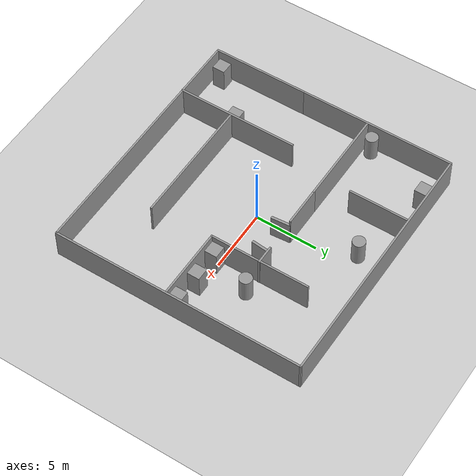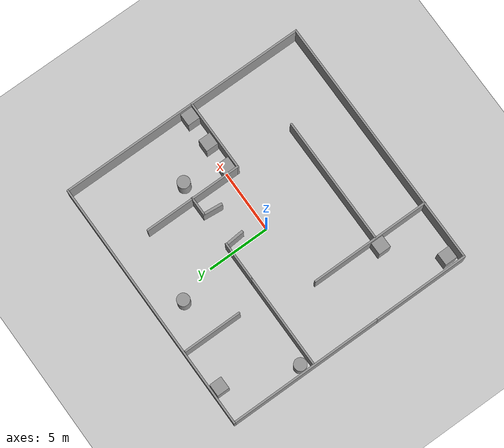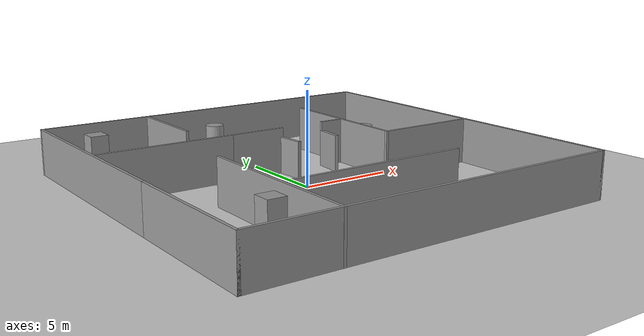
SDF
<sdf version="1.7">
 <world name="default">
  <light name="sun" type="directional">
   <pose>0 0 10 0 -0 0</pose>
   <diffuse>0.8 0.8 0.8 1</diffuse>
   <specular>0.2 0.2 0.2 1</specular>
   <attenuation>
    <range>1000</range>
    <constant>0.9</constant>
    <linear>0.01</linear>
    <quadratic>0.001</quadratic>
   </attenuation>
   <direction>-0.5 0.1 -0.9</direction>
   <spot><inner_angle>0</inner_angle><outer_angle>0</outer_angle><falloff>0</falloff></spot>
  </light>
  <model name="ground_plane">
   <static>1</static>
   <link name="link">
    <collision name="collision">
     <geometry><plane><normal>0 0 1</normal><size>100 100</size></plane></geometry>
     <surface><friction><ode><mu>100</mu><mu2>50</mu2></ode></friction></surface>
    </collision>
    <visual name="visual">
     <cast_shadows>0</cast_shadows>
     <geometry><plane><normal>0 0 1</normal><size>100 100</size></plane></geometry>
     <material>
      <script><uri>file://media/materials/scripts/gazebo.material</uri><name>Gazebo/Grey</name></script>
     </material>
    </visual>
   </link>
  </model>
  <gravity>0 0 -9.8</gravity>
  <magnetic_field>6e-06 2.3e-05 -4.2e-05</magnetic_field>
  <atmosphere type="adiabatic"/>
  <physics type="ode">
   <max_step_size>0.001</max_step_size>
   <real_time_factor>1</real_time_factor>
   <real_time_update_rate>1000</real_time_update_rate>
  </physics>
  <scene><ambient>0.4 0.4 0.4 1</ambient><background>0.7 0.7 0.7 1</background><shadows>1</shadows></scene>
  <audio><device>default</device></audio>
  <spherical_coordinates>
   <surface_model>EARTH_WGS84</surface_model>
   <latitude_deg>0</latitude_deg>
   <longitude_deg>0</longitude_deg>
   <elevation>0</elevation>
   <heading_deg>0</heading_deg>
  </spherical_coordinates>
  <model name="square">
   <pose>0.065 0.04 0 0 -0 0</pose>
   <link name="Wall_3">
    <collision name="Wall_3_Collision">
     <geometry><box><size>7.75 0.15 2.5</size></box></geometry>
     <pose>0 0 1.25 0 -0 0</pose>
    </collision>
    <visual name="Wall_3_Visual">
     <pose>0 0 1.25 0 -0 0</pose>
     <geometry><box><size>7.75 0.15 2.5</size></box></geometry>
     <material>
      <script><uri>file://media/materials/scripts/gazebo.material</uri><name>Gazebo/Grey</name></script>
      <ambient>1 1 1 1</ambient>
     </material>
     <meta><layer>0</layer></meta>
    </visual>
    <pose>-10.175 -6.25 0 0 -0 -1.5708</pose>
   </link>
   <link name="Wall_4">
    <collision name="Wall_4_Collision">
     <geometry><box><size>20.5 0.15 2.5</size></box></geometry>
     <pose>0 0 1.25 0 -0 0</pose>
    </collision>
    <visual name="Wall_4_Visual">
     <pose>0 0 1.25 0 -0 0</pose>
     <geometry><box><size>20.5 0.15 2.5</size></box></geometry>
     <material>
      <script><uri>file://media/materials/scripts/gazebo.material</uri><name>Gazebo/Grey</name></script>
      <ambient>1 1 1 1</ambient>
     </material>
     <meta><layer>0</layer></meta>
    </visual>
    <pose>-0 -10.05 0 0 -0 0</pose>
   </link>
   <link name="Wall_5">
    <collision name="Wall_5_Collision">
     <geometry><box><size>20.25 0.15 2.5</size></box></geometry>
     <pose>0 0 1.25 0 -0 0</pose>
    </collision>
    <visual name="Wall_5_Visual">
     <pose>0 0 1.25 0 -0 0</pose>
     <geometry><box><size>20.25 0.15 2.5</size></box></geometry>
     <material>
      <script><uri>file://media/materials/scripts/gazebo.material</uri><name>Gazebo/Grey</name></script>
      <ambient>1 1 1 1</ambient>
     </material>
     <meta><layer>0</layer></meta>
    </visual>
    <pose>10.175 0 0 0 -0 1.5708</pose>
   </link>
   <link name="Wall_6">
    <collision name="Wall_6_Collision">
     <geometry><box><size>20.5 0.15 2.5</size></box></geometry>
     <pose>0 0 1.25 0 -0 0</pose>
    </collision>
    <visual name="Wall_6_Visual">
     <pose>0 0 1.25 0 -0 0</pose>
     <geometry><box><size>20.5 0.15 2.5</size></box></geometry>
     <material>
      <script><uri>file://media/materials/scripts/gazebo.material</uri><name>Gazebo/Grey</name></script>
      <ambient>1 1 1 1</ambient>
     </material>
     <meta><layer>0</layer></meta>
    </visual>
    <pose>-0 10.05 0 0 -0 3.14159</pose>
   </link>
   <link name="Wall_7">
    <collision name="Wall_7_Collision">
     <geometry><box><size>12.5 0.15 2.5</size></box></geometry>
     <pose>0 0 1.25 0 -0 0</pose>
    </collision>
    <visual name="Wall_7_Visual">
     <pose>0 0 1.25 0 -0 0</pose>
     <geometry><box><size>12.5 0.15 2.5</size></box></geometry>
     <material>
      <script><uri>file://media/materials/scripts/gazebo.material</uri><name>Gazebo/Grey</name></script>
      <ambient>1 1 1 1</ambient>
     </material>
     <meta><layer>0</layer></meta>
    </visual>
    <pose>-10.175 3.875 0 0 -0 -1.5708</pose>
   </link>
   <static>1</static>
  </model>
  <model name="simple_maze">
   <pose>0.107151 -0.04668 0 0 -0 0</pose>
   <link name="Door_0">
    <collision name="Door_0_Collision">
     <geometry><box><size>1.55342 0.2 2</size></box></geometry>
     <pose>0 0 1 0 -0 0</pose>
    </collision>
    <visual name="Door_0_Visual">
     <pose>0 0 1 0 -0 0</pose>
     <geometry><box><size>1.55342 0.2 2</size></box></geometry>
     <material>
      <script><uri>file://media/materials/scripts/gazebo.material</uri><name>Gazebo/Grey</name></script>
     </material>
    </visual>
    <pose>0.473717 2.45071 0 0 0 -1.49108</pose>
   </link>
   <link name="Door_1">
    <collision name="Door_1_Collision">
     <geometry><box><size>1.60105 0.2 2</size></box></geometry>
     <pose>0 0 1 0 -0 0</pose>
    </collision>
    <visual name="Door_1_Visual">
     <pose>0 0 1 0 -0 0</pose>
     <geometry><box><size>1.60105 0.2 2</size></box></geometry>
     <material>
      <script><uri>file://media/materials/scripts/gazebo.material</uri><name>Gazebo/Grey</name></script>
     </material>
    </visual>
    <pose>3.08924 2.50944 0 0 -0 1.47122</pose>
   </link>
   <link name="Wall_13">
    <collision name="Wall_13_Collision">
     <geometry><box><size>9.75 0.15 2.5</size></box></geometry>
     <pose>0 0 1.25 0 -0 0</pose>
    </collision>
    <visual name="Wall_13_Visual">
     <pose>0 0 1.25 0 -0 0</pose>
     <geometry><box><size>9.75 0.15 2.5</size></box></geometry>
     <material>
      <script><uri>file://media/materials/scripts/gazebo.material</uri><name>Gazebo/Grey</name></script>
      <ambient>1 1 1 1</ambient>
     </material>
     <meta><layer>0</layer></meta>
    </visual>
    <pose>-5.47247 -5.17467 0 0 -0 -1.5708</pose>
   </link>
   <link name="Wall_15">
    <collision name="Wall_15_Collision">
     <geometry><box><size>8 0.15 2.5</size></box></geometry>
     <pose>0 0 1.25 0 -0 0</pose>
    </collision>
    <visual name="Wall_15_Visual">
     <pose>0 0 1.25 0 -0 0</pose>
     <geometry><box><size>8 0.15 2.5</size></box></geometry>
     <material>
      <script><uri>file://media/materials/scripts/gazebo.material</uri><name>Gazebo/Grey</name></script>
      <ambient>1 1 1 1</ambient>
     </material>
     <meta><layer>0</layer></meta>
    </visual>
    <pose>4.46935 3.21384 0 0 -0 1.5708</pose>
   </link>
   <link name="Wall_17">
    <collision name="Wall_17_Collision">
     <geometry><box><size>7.52645 0.15 2.5</size></box></geometry>
     <pose>0 0 1.25 0 -0 0</pose>
    </collision>
    <visual name="Wall_17_Visual">
     <pose>0 0 1.25 0 -0 0</pose>
     <geometry><box><size>7.52645 0.15 2.5</size></box></geometry>
     <material>
      <script><uri>file://media/materials/scripts/gazebo.material</uri><name>Gazebo/Grey</name></script>
      <ambient>1 1 1 1</ambient>
     </material>
     <meta><layer>0</layer></meta>
    </visual>
    <pose>-6.38113 3.20439 0 0 -0 3.14159</pose>
   </link>
   <link name="Wall_19">
    <collision name="Wall_19_Collision">
     <geometry><box><size>5.75 0.15 2.5</size></box></geometry>
     <pose>0 0 1.25 0 -0 0</pose>
    </collision>
    <visual name="Wall_19_Visual">
     <pose>0 0 1.25 0 -0 0</pose>
     <geometry><box><size>5.75 0.15 2.5</size></box></geometry>
     <material>
      <script><uri>file://media/materials/scripts/gazebo.material</uri><name>Gazebo/Grey</name></script>
      <ambient>1 1 1 1</ambient>
     </material>
     <meta><layer>0</layer></meta>
    </visual>
    <pose>7.26935 -0.711157 0 0 -0 0</pose>
   </link>
   <link name="Wall_22">
    <collision name="Wall_22_Collision">
     <geometry><box><size>3.25 0.15 2.5</size></box></geometry>
     <pose>0 0 1.25 0 -0 0</pose>
    </collision>
    <visual name="Wall_22_Visual">
     <pose>0 0 1.25 0 -0 0</pose>
     <geometry><box><size>3.25 0.15 2.5</size></box></geometry>
     <material>
      <script><uri>file://media/materials/scripts/gazebo.material</uri><name>Gazebo/Grey</name></script>
      <ambient>1 1 1 1</ambient>
     </material>
     <meta><layer>0</layer></meta>
    </visual>
    <pose>-1.15613 3.20439 0 0 -0 3.14159</pose>
   </link>
   <link name="Wall_24">
    <collision name="Wall_24_Collision">
     <geometry><box><size>4.75 0.15 2.5</size></box></geometry>
     <pose>0 0 1.25 0 -0 0</pose>
    </collision>
    <visual name="Wall_24_Visual">
     <pose>0 0 1.25 0 -0 0</pose>
     <geometry><box><size>4.75 0.15 2.5</size></box></geometry>
     <material>
      <script><uri>file://media/materials/scripts/gazebo.material</uri><name>Gazebo/Grey</name></script>
      <ambient>1 1 1 1</ambient>
     </material>
     <meta><layer>0</layer></meta>
    </visual>
    <pose>-4.13219 7.67467 0 0 -0 1.5708</pose>
   </link>
   <link name="Wall_27">
    <collision name="Wall_27_Collision">
     <geometry><box><size>1.5 0.15 2.5</size></box></geometry>
     <pose>0 0 1.25 0 -0 0</pose>
    </collision>
    <visual name="Wall_27_Visual">
     <pose>0 0 1.25 0 -0 0</pose>
     <geometry><box><size>1.5 0.15 2.5</size></box></geometry>
     <material>
      <script><uri>file://media/materials/scripts/gazebo.material</uri><name>Gazebo/Grey</name></script>
      <ambient>1 1 1 1</ambient>
     </material>
     <meta><layer>0</layer></meta>
    </visual>
    <pose>3.81922 3.2479 0 0 -0 3.14159</pose>
   </link>
   <link name="Wall_29">
    <collision name="Wall_29_Collision">
     <geometry><box><size>10.25 0.15 2.5</size></box></geometry>
     <pose>0 0 1.25 0 -0 0</pose>
    </collision>
    <visual name="Wall_29_Visual">
     <pose>0 0 1.25 0 -0 0</pose>
     <geometry><box><size>10.25 0.15 2.5</size></box></geometry>
     <material>
      <script><uri>file://media/materials/scripts/gazebo.material</uri><name>Gazebo/Grey</name></script>
      <ambient>1 1 1 1</ambient>
     </material>
     <meta><layer>0</layer></meta>
    </visual>
    <pose>-0.330734 -5.64892 0 0 -0 3.14159</pose>
   </link>
   <static>1</static>
  </model>
  <model name="higher_cylinder">
   <link name="link_1">
    <inertial>
     <mass>1</mass>
     <inertia><ixx>0.145833</ixx><ixy>0</ixy><ixz>0</ixz><iyy>0.145833</iyy><iyz>0</iyz><izz>0.125</izz></inertia>
    </inertial>
    <visual name="visual">
     <geometry><cylinder><radius>0.5</radius><length>2</length></cylinder></geometry>
     <material>
      <lighting>1</lighting>
      <script><uri>file://media/materials/scripts/gazebo.material</uri><name>Gazebo/Grey</name></script>
      <shader type="pixel"><normal_map>__default__</normal_map></shader>
      <ambient>0.3 0.3 0.3 1</ambient>
      <diffuse>0.7 0.7 0.7 1</diffuse>
      <specular>0.01 0.01 0.01 1</specular>
      <emissive>0 0 0 1</emissive>
     </material>
    </visual>
    <collision name="collision">
     <geometry><cylinder><radius>0.5</radius><length>2</length></cylinder></geometry>
     <surface>
      <friction>
       <ode><mu>1</mu><mu2>1</mu2><fdir1>0 0 0</fdir1><slip1>0</slip1><slip2>0</slip2></ode>
       <torsional>
        <coefficient>1</coefficient>
        <patch_radius>0</patch_radius>
        <surface_radius>0</surface_radius>
        <use_patch_radius>1</use_patch_radius>
        <ode><slip>0</slip></ode>
       </torsional>
      </friction>
      <bounce><restitution_coefficient>0</restitution_coefficient><threshold>1e+06</threshold></bounce>
      <contact>
       <collide_without_contact>0</collide_without_contact>
       <collide_without_contact_bitmask>1</collide_without_contact_bitmask>
       <collide_bitmask>1</collide_bitmask>
       <ode>
        <soft_cfm>0</soft_cfm>
        <soft_erp>0.2</soft_erp>
        <kp>1e+13</kp>
        <kd>1</kd>
        <max_vel>0.01</max_vel>
        <min_depth>0</min_depth>
       </ode>
       <bullet>
        <split_impulse>1</split_impulse>
        <split_impulse_penetration_threshold>-0.01</split_impulse_penetration_threshold>
        <soft_cfm>0</soft_cfm>
        <soft_erp>0.2</soft_erp>
        <kp>1e+13</kp>
        <kd>1</kd>
       </bullet>
      </contact>
     </surface>
    </collision>
   </link>
   <static>0</static>
   <pose>6.00609 2.9938 0.999993 0 -0 7.6e-05</pose>
  </model>
  <model name="higher_box">
   <link name="link">
    <inertial>
     <mass>1</mass>
     <inertia>
      <ixx>0.166667</ixx>
      <ixy>0</ixy>
      <ixz>0</ixz>
      <iyy>0.166667</iyy>
      <iyz>0</iyz>
      <izz>0.166667</izz>
     </inertia>
    </inertial>
    <visual name="visual">
     <geometry><box><size>1 1 2</size></box></geometry>
     <material>
      <script><name>Gazebo/Grey</name><uri>file://media/materials/scripts/gazebo.material</uri></script>
      <shader type="pixel"><normal_map>__default__</normal_map></shader>
      <ambient>0.3 0.3 0.3 1</ambient>
      <diffuse>0.7 0.7 0.7 1</diffuse>
      <specular>0.01 0.01 0.01 1</specular>
      <emissive>0 0 0 1</emissive>
     </material>
    </visual>
    <collision name="collision">
     <geometry><box><size>1 1 2</size></box></geometry>
     <surface>
      <friction>
       <ode><mu>1</mu><mu2>1</mu2><fdir1>0 0 0</fdir1><slip1>0</slip1><slip2>0</slip2></ode>
       <torsional>
        <coefficient>1</coefficient>
        <patch_radius>0</patch_radius>
        <surface_radius>0</surface_radius>
        <use_patch_radius>1</use_patch_radius>
        <ode><slip>0</slip></ode>
       </torsional>
      </friction>
      <bounce><restitution_coefficient>0</restitution_coefficient><threshold>1e+06</threshold></bounce>
      <contact>
       <collide_without_contact>0</collide_without_contact>
       <collide_without_contact_bitmask>1</collide_without_contact_bitmask>
       <collide_bitmask>1</collide_bitmask>
       <ode>
        <soft_cfm>0</soft_cfm>
        <soft_erp>0.2</soft_erp>
        <kp>1e+13</kp>
        <kd>1</kd>
        <max_vel>0.01</max_vel>
        <min_depth>0</min_depth>
       </ode>
       <bullet>
        <split_impulse>1</split_impulse>
        <split_impulse_penetration_threshold>-0.01</split_impulse_penetration_threshold>
        <soft_cfm>0</soft_cfm>
        <soft_erp>0.2</soft_erp>
        <kp>1e+13</kp>
        <kd>1</kd>
       </bullet>
      </contact>
     </surface>
    </collision>
   </link>
   <static>0</static>
   <pose>5.15162 -0.173951 1 0 0 -0.000102</pose>
  </model>
  <model name="higher_box_clone_clone">
   <link name="link">
    <inertial>
     <mass>1</mass>
     <inertia>
      <ixx>0.166667</ixx>
      <ixy>0</ixy>
      <ixz>0</ixz>
      <iyy>0.166667</iyy>
      <iyz>0</iyz>
      <izz>0.166667</izz>
     </inertia>
    </inertial>
    <visual name="visual">
     <geometry><box><size>1 1 2</size></box></geometry>
     <material>
      <script><name>Gazebo/Grey</name><uri>file://media/materials/scripts/gazebo.material</uri></script>
      <shader type="pixel"><normal_map>__default__</normal_map></shader>
      <ambient>0.3 0.3 0.3 1</ambient>
      <diffuse>0.7 0.7 0.7 1</diffuse>
      <specular>0.01 0.01 0.01 1</specular>
      <emissive>0 0 0 1</emissive>
     </material>
    </visual>
    <collision name="collision">
     <geometry><box><size>1 1 2</size></box></geometry>
     <surface>
      <friction>
       <ode><mu>1</mu><mu2>1</mu2><fdir1>0 0 0</fdir1><slip1>0</slip1><slip2>0</slip2></ode>
       <torsional>
        <coefficient>1</coefficient>
        <patch_radius>0</patch_radius>
        <surface_radius>0</surface_radius>
        <use_patch_radius>1</use_patch_radius>
        <ode><slip>0</slip></ode>
       </torsional>
      </friction>
      <bounce><restitution_coefficient>0</restitution_coefficient><threshold>1e+06</threshold></bounce>
      <contact>
       <collide_without_contact>0</collide_without_contact>
       <collide_without_contact_bitmask>1</collide_without_contact_bitmask>
       <collide_bitmask>1</collide_bitmask>
       <ode>
        <soft_cfm>0</soft_cfm>
        <soft_erp>0.2</soft_erp>
        <kp>1e+13</kp>
        <kd>1</kd>
        <max_vel>0.01</max_vel>
        <min_depth>0</min_depth>
       </ode>
       <bullet>
        <split_impulse>1</split_impulse>
        <split_impulse_penetration_threshold>-0.01</split_impulse_penetration_threshold>
        <soft_cfm>0</soft_cfm>
        <soft_erp>0.2</soft_erp>
        <kp>1e+13</kp>
        <kd>1</kd>
       </bullet>
      </contact>
     </surface>
    </collision>
   </link>
   <static>0</static>
   <pose>9.66473 -0.181962 0.999996 -7e-06 0 1.6e-05</pose>
  </model>
  <model name="higher_box_clone">
   <link name="link">
    <inertial>
     <mass>1</mass>
     <inertia>
      <ixx>0.166667</ixx>
      <ixy>0</ixy>
      <ixz>0</ixz>
      <iyy>0.166667</iyy>
      <iyz>0</iyz>
      <izz>0.166667</izz>
     </inertia>
    </inertial>
    <visual name="visual">
     <geometry><box><size>1 1 2</size></box></geometry>
     <material>
      <script><name>Gazebo/Grey</name><uri>file://media/materials/scripts/gazebo.material</uri></script>
      <shader type="pixel"><normal_map>__default__</normal_map></shader>
      <ambient>0.3 0.3 0.3 1</ambient>
      <diffuse>0.7 0.7 0.7 1</diffuse>
      <specular>0.01 0.01 0.01 1</specular>
      <emissive>0 0 0 1</emissive>
     </material>
    </visual>
    <collision name="collision">
     <geometry><box><size>1 1 2</size></box></geometry>
     <surface>
      <friction>
       <ode><mu>1</mu><mu2>1</mu2><fdir1>0 0 0</fdir1><slip1>0</slip1><slip2>0</slip2></ode>
       <torsional>
        <coefficient>1</coefficient>
        <patch_radius>0</patch_radius>
        <surface_radius>0</surface_radius>
        <use_patch_radius>1</use_patch_radius>
        <ode><slip>0</slip></ode>
       </torsional>
      </friction>
      <bounce><restitution_coefficient>0</restitution_coefficient><threshold>1e+06</threshold></bounce>
      <contact>
       <collide_without_contact>0</collide_without_contact>
       <collide_without_contact_bitmask>1</collide_without_contact_bitmask>
       <collide_bitmask>1</collide_bitmask>
       <ode>
        <soft_cfm>0</soft_cfm>
        <soft_erp>0.2</soft_erp>
        <kp>1e+13</kp>
        <kd>1</kd>
        <max_vel>0.01</max_vel>
        <min_depth>0</min_depth>
       </ode>
       <bullet>
        <split_impulse>1</split_impulse>
        <split_impulse_penetration_threshold>-0.01</split_impulse_penetration_threshold>
        <soft_cfm>0</soft_cfm>
        <soft_erp>0.2</soft_erp>
        <kp>1e+13</kp>
        <kd>1</kd>
       </bullet>
      </contact>
     </surface>
    </collision>
   </link>
   <static>0</static>
   <pose>7.35302 -0.143406 1 1e-06 -0 -0.000469</pose>
  </model>
  <model name="higher_cylinder_clone">
   <link name="link_1">
    <inertial>
     <mass>1</mass>
     <inertia><ixx>0.145833</ixx><ixy>0</ixy><ixz>0</ixz><iyy>0.145833</iyy><iyz>0</iyz><izz>0.125</izz></inertia>
    </inertial>
    <visual name="visual">
     <geometry><cylinder><radius>0.5</radius><length>2</length></cylinder></geometry>
     <material>
      <lighting>1</lighting>
      <script><uri>file://media/materials/scripts/gazebo.material</uri><name>Gazebo/Grey</name></script>
      <shader type="pixel"><normal_map>__default__</normal_map></shader>
      <ambient>0.3 0.3 0.3 1</ambient>
      <diffuse>0.7 0.7 0.7 1</diffuse>
      <specular>0.01 0.01 0.01 1</specular>
      <emissive>0 0 0 1</emissive>
     </material>
    </visual>
    <collision name="collision">
     <geometry><cylinder><radius>0.5</radius><length>2</length></cylinder></geometry>
     <surface>
      <friction>
       <ode><mu>1</mu><mu2>1</mu2><fdir1>0 0 0</fdir1><slip1>0</slip1><slip2>0</slip2></ode>
       <torsional>
        <coefficient>1</coefficient>
        <patch_radius>0</patch_radius>
        <surface_radius>0</surface_radius>
        <use_patch_radius>1</use_patch_radius>
        <ode><slip>0</slip></ode>
       </torsional>
      </friction>
      <bounce><restitution_coefficient>0</restitution_coefficient><threshold>1e+06</threshold></bounce>
      <contact>
       <collide_without_contact>0</collide_without_contact>
       <collide_without_contact_bitmask>1</collide_without_contact_bitmask>
       <collide_bitmask>1</collide_bitmask>
       <ode>
        <soft_cfm>0</soft_cfm>
        <soft_erp>0.2</soft_erp>
        <kp>1e+13</kp>
        <kd>1</kd>
        <max_vel>0.01</max_vel>
        <min_depth>0</min_depth>
       </ode>
       <bullet>
        <split_impulse>1</split_impulse>
        <split_impulse_penetration_threshold>-0.01</split_impulse_penetration_threshold>
        <soft_cfm>0</soft_cfm>
        <soft_erp>0.2</soft_erp>
        <kp>1e+13</kp>
        <kd>1</kd>
       </bullet>
      </contact>
     </surface>
    </collision>
   </link>
   <static>0</static>
   <pose>-0.898258 7.93155 0.999993 0 -0 7.6e-05</pose>
  </model>
  <model name="higher_cylinder_clone_1">
   <link name="link_1">
    <inertial>
     <mass>1</mass>
     <inertia><ixx>0.145833</ixx><ixy>0</ixy><ixz>0</ixz><iyy>0.145833</iyy><iyz>0</iyz><izz>0.125</izz></inertia>
    </inertial>
    <visual name="visual">
     <geometry><cylinder><radius>0.5</radius><length>2</length></cylinder></geometry>
     <material>
      <lighting>1</lighting>
      <script><uri>file://media/materials/scripts/gazebo.material</uri><name>Gazebo/Grey</name></script>
      <shader type="pixel"><normal_map>__default__</normal_map></shader>
      <ambient>0.3 0.3 0.3 1</ambient>
      <diffuse>0.7 0.7 0.7 1</diffuse>
      <specular>0.01 0.01 0.01 1</specular>
      <emissive>0 0 0 1</emissive>
     </material>
    </visual>
    <collision name="collision">
     <geometry><cylinder><radius>0.5</radius><length>2</length></cylinder></geometry>
     <surface>
      <friction>
       <ode><mu>1</mu><mu2>1</mu2><fdir1>0 0 0</fdir1><slip1>0</slip1><slip2>0</slip2></ode>
       <torsional>
        <coefficient>1</coefficient>
        <patch_radius>0</patch_radius>
        <surface_radius>0</surface_radius>
        <use_patch_radius>1</use_patch_radius>
        <ode><slip>0</slip></ode>
       </torsional>
      </friction>
      <bounce><restitution_coefficient>0</restitution_coefficient><threshold>1e+06</threshold></bounce>
      <contact>
       <collide_without_contact>0</collide_without_contact>
       <collide_without_contact_bitmask>1</collide_without_contact_bitmask>
       <collide_bitmask>1</collide_bitmask>
       <ode>
        <soft_cfm>0</soft_cfm>
        <soft_erp>0.2</soft_erp>
        <kp>1e+13</kp>
        <kd>1</kd>
        <max_vel>0.01</max_vel>
        <min_depth>0</min_depth>
       </ode>
       <bullet>
        <split_impulse>1</split_impulse>
        <split_impulse_penetration_threshold>-0.01</split_impulse_penetration_threshold>
        <soft_cfm>0</soft_cfm>
        <soft_erp>0.2</soft_erp>
        <kp>1e+13</kp>
        <kd>1</kd>
       </bullet>
      </contact>
     </surface>
    </collision>
   </link>
   <static>0</static>
   <pose>-9.47922 3.89897 0.999993 0 -0 7.6e-05</pose>
  </model>
  <model name="higher_box_clone_clone_0">
   <link name="link">
    <inertial>
     <mass>1</mass>
     <inertia>
      <ixx>0.166667</ixx>
      <ixy>0</ixy>
      <ixz>0</ixz>
      <iyy>0.166667</iyy>
      <iyz>0</iyz>
      <izz>0.166667</izz>
     </inertia>
    </inertial>
    <visual name="visual">
     <geometry><box><size>1 1 2</size></box></geometry>
     <material>
      <script><name>Gazebo/Grey</name><uri>file://media/materials/scripts/gazebo.material</uri></script>
      <shader type="pixel"><normal_map>__default__</normal_map></shader>
      <ambient>0.3 0.3 0.3 1</ambient>
      <diffuse>0.7 0.7 0.7 1</diffuse>
      <specular>0.01 0.01 0.01 1</specular>
      <emissive>0 0 0 1</emissive>
     </material>
    </visual>
    <collision name="collision">
     <geometry><box><size>1 1 2</size></box></geometry>
     <surface>
      <friction>
       <ode><mu>1</mu><mu2>1</mu2><fdir1>0 0 0</fdir1><slip1>0</slip1><slip2>0</slip2></ode>
       <torsional>
        <coefficient>1</coefficient>
        <patch_radius>0</patch_radius>
        <surface_radius>0</surface_radius>
        <use_patch_radius>1</use_patch_radius>
        <ode><slip>0</slip></ode>
       </torsional>
      </friction>
      <bounce><restitution_coefficient>0</restitution_coefficient><threshold>1e+06</threshold></bounce>
      <contact>
       <collide_without_contact>0</collide_without_contact>
       <collide_without_contact_bitmask>1</collide_without_contact_bitmask>
       <collide_bitmask>1</collide_bitmask>
       <ode>
        <soft_cfm>0</soft_cfm>
        <soft_erp>0.2</soft_erp>
        <kp>1e+13</kp>
        <kd>1</kd>
        <max_vel>0.01</max_vel>
        <min_depth>0</min_depth>
       </ode>
       <bullet>
        <split_impulse>1</split_impulse>
        <split_impulse_penetration_threshold>-0.01</split_impulse_penetration_threshold>
        <soft_cfm>0</soft_cfm>
        <soft_erp>0.2</soft_erp>
        <kp>1e+13</kp>
        <kd>1</kd>
       </bullet>
      </contact>
     </surface>
    </collision>
   </link>
   <static>0</static>
   <pose>-7.39823 9.43985 0.999996 3e-06 -6e-06 -0.000458</pose>
  </model>
  <model name="higher_box_clone_0">
   <link name="link">
    <inertial>
     <mass>1</mass>
     <inertia>
      <ixx>0.166667</ixx>
      <ixy>0</ixy>
      <ixz>0</ixz>
      <iyy>0.166667</iyy>
      <iyz>0</iyz>
      <izz>0.166667</izz>
     </inertia>
    </inertial>
    <visual name="visual">
     <geometry><box><size>1 1 2</size></box></geometry>
     <material>
      <script><name>Gazebo/Grey</name><uri>file://media/materials/scripts/gazebo.material</uri></script>
      <shader type="pixel"><normal_map>__default__</normal_map></shader>
      <ambient>0.3 0.3 0.3 1</ambient>
      <diffuse>0.7 0.7 0.7 1</diffuse>
      <specular>0.01 0.01 0.01 1</specular>
      <emissive>0 0 0 1</emissive>
     </material>
    </visual>
    <collision name="collision">
     <geometry><box><size>1 1 2</size></box></geometry>
     <surface>
      <friction>
       <ode><mu>1</mu><mu2>1</mu2><fdir1>0 0 0</fdir1><slip1>0</slip1><slip2>0</slip2></ode>
       <torsional>
        <coefficient>1</coefficient>
        <patch_radius>0</patch_radius>
        <surface_radius>0</surface_radius>
        <use_patch_radius>1</use_patch_radius>
        <ode><slip>0</slip></ode>
       </torsional>
      </friction>
      <bounce><restitution_coefficient>0</restitution_coefficient><threshold>1e+06</threshold></bounce>
      <contact>
       <collide_without_contact>0</collide_without_contact>
       <collide_without_contact_bitmask>1</collide_without_contact_bitmask>
       <collide_bitmask>1</collide_bitmask>
       <ode>
        <soft_cfm>0</soft_cfm>
        <soft_erp>0.2</soft_erp>
        <kp>1e+13</kp>
        <kd>1</kd>
        <max_vel>0.01</max_vel>
        <min_depth>0</min_depth>
       </ode>
       <bullet>
        <split_impulse>1</split_impulse>
        <split_impulse_penetration_threshold>-0.01</split_impulse_penetration_threshold>
        <soft_cfm>0</soft_cfm>
        <soft_erp>0.2</soft_erp>
        <kp>1e+13</kp>
        <kd>1</kd>
       </bullet>
      </contact>
     </surface>
    </collision>
   </link>
   <static>0</static>
   <pose>-9.31954 -9.15059 0.999999 3e-06 0 7.5e-05</pose>
  </model>
  <model name="higher_box_clone_1">
   <link name="link">
    <inertial>
     <mass>1</mass>
     <inertia>
      <ixx>0.166667</ixx>
      <ixy>0</ixy>
      <ixz>0</ixz>
      <iyy>0.166667</iyy>
      <iyz>0</iyz>
      <izz>0.166667</izz>
     </inertia>
    </inertial>
    <visual name="visual">
     <geometry><box><size>1 1 2</size></box></geometry>
     <material>
      <script><name>Gazebo/Grey</name><uri>file://media/materials/scripts/gazebo.material</uri></script>
      <shader type="pixel"><normal_map>__default__</normal_map></shader>
      <ambient>0.3 0.3 0.3 1</ambient>
      <diffuse>0.7 0.7 0.7 1</diffuse>
      <specular>0.01 0.01 0.01 1</specular>
      <emissive>0 0 0 1</emissive>
     </material>
    </visual>
    <collision name="collision">
     <geometry><box><size>1 1 2</size></box></geometry>
     <surface>
      <friction>
       <ode><mu>1</mu><mu2>1</mu2><fdir1>0 0 0</fdir1><slip1>0</slip1><slip2>0</slip2></ode>
       <torsional>
        <coefficient>1</coefficient>
        <patch_radius>0</patch_radius>
        <surface_radius>0</surface_radius>
        <use_patch_radius>1</use_patch_radius>
        <ode><slip>0</slip></ode>
       </torsional>
      </friction>
      <bounce><restitution_coefficient>0</restitution_coefficient><threshold>1e+06</threshold></bounce>
      <contact>
       <collide_without_contact>0</collide_without_contact>
       <collide_without_contact_bitmask>1</collide_without_contact_bitmask>
       <collide_bitmask>1</collide_bitmask>
       <ode>
        <soft_cfm>0</soft_cfm>
        <soft_erp>0.2</soft_erp>
        <kp>1e+13</kp>
        <kd>1</kd>
        <max_vel>0.01</max_vel>
        <min_depth>0</min_depth>
       </ode>
       <bullet>
        <split_impulse>1</split_impulse>
        <split_impulse_penetration_threshold>-0.01</split_impulse_penetration_threshold>
        <soft_cfm>0</soft_cfm>
        <soft_erp>0.2</soft_erp>
        <kp>1e+13</kp>
        <kd>1</kd>
       </bullet>
      </contact>
     </surface>
    </collision>
   </link>
   <static>0</static>
   <pose>-5.9431 -5.76186 0.999998 0 -5e-06 -0.00016</pose>
  </model>
 </world>
</sdf>
